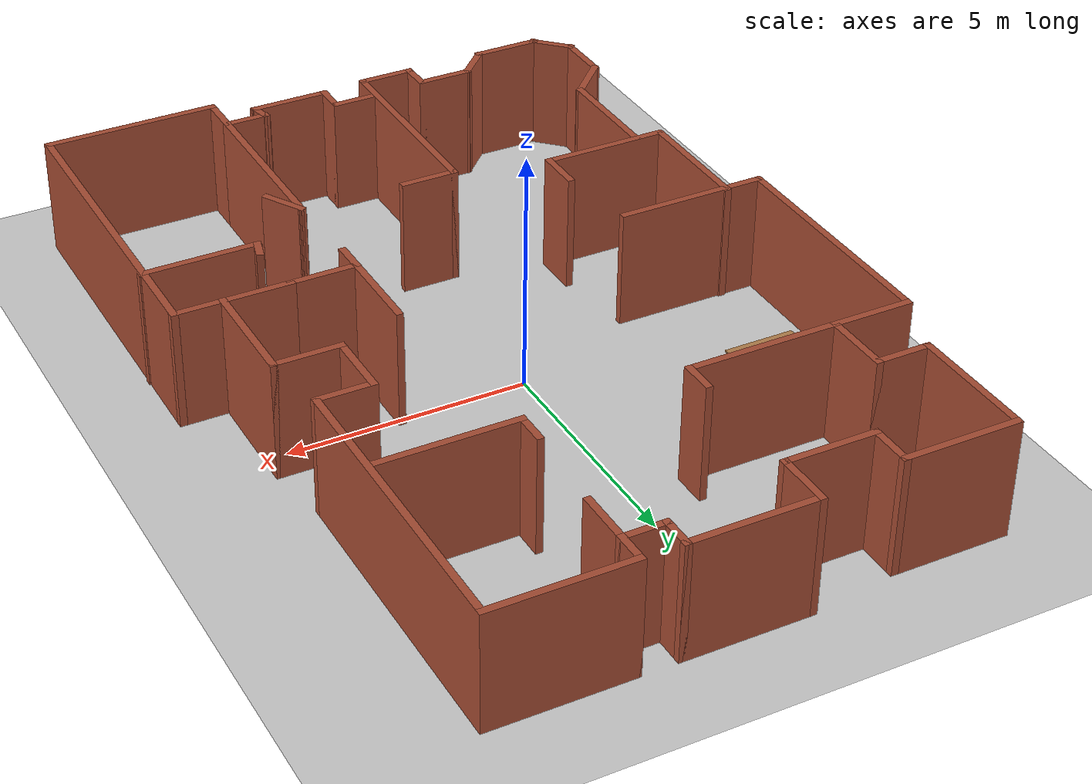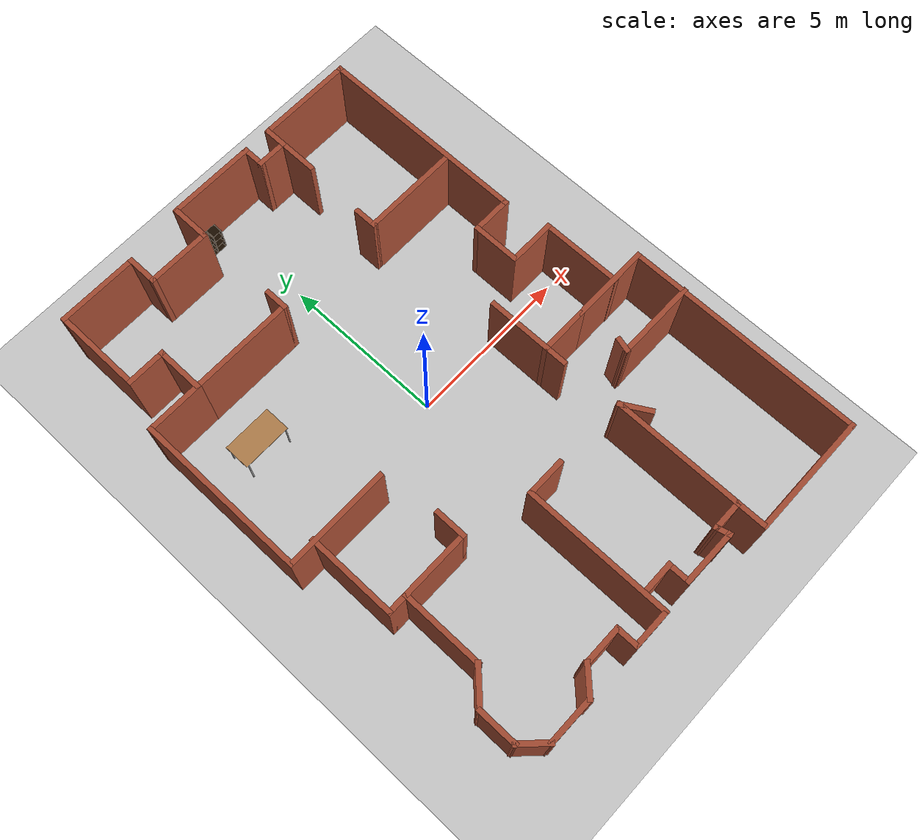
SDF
<sdf version="1.6">
 <world name="default">
  <model name="ground_plane">
   <static>1</static>
   <link name="link">
    <collision name="collision">
     <geometry><plane><normal>0 0 1</normal><size>100 100</size></plane></geometry>
     <surface>
      <contact><collide_bitmask>65535</collide_bitmask></contact>
      <friction><ode><mu>100</mu><mu2>50</mu2></ode></friction>
     </surface>
    </collision>
    <visual name="visual">
     <cast_shadows>0</cast_shadows>
     <geometry><plane><normal>0 0 1</normal><size>100 100</size></plane></geometry>
     <material>
      <script><uri>file://media/materials/scripts/gazebo.material</uri><name>Gazebo/Grey</name></script>
     </material>
    </visual>
   </link>
  </model>
  <model name="map_57">
   <pose>0.273385 -0.320951 0 0 -0 0</pose>
   <link name="Wall_0">
    <collision name="Wall_0_Collision">
     <geometry><box><size>1.25 0.15 2.5</size></box></geometry>
     <pose>0 0 1.25 0 -0 0</pose>
    </collision>
    <visual name="Wall_0_Visual">
     <pose>0 0 1.25 0 -0 0</pose>
     <geometry><box><size>1.25 0.15 2.5</size></box></geometry>
     <material>
      <script><uri>file://media/materials/scripts/gazebo.material</uri><name>Gazebo/Bricks</name></script>
      <ambient>1 1 1 1</ambient>
     </material>
     <meta><layer>0</layer></meta>
    </visual>
    <pose>-1.43298 8.01831 0 0 -0 -1.5708</pose>
   </link>
   <link name="Wall_1">
    <collision name="Wall_1_Collision">
     <geometry><box><size>2 0.15 2.5</size></box></geometry>
     <pose>0 0 1.25 0 -0 0</pose>
    </collision>
    <visual name="Wall_1_Visual">
     <pose>0 0 1.25 0 -0 0</pose>
     <geometry><box><size>2 0.15 2.5</size></box></geometry>
     <material>
      <script><uri>file://media/materials/scripts/gazebo.material</uri><name>Gazebo/Bricks</name></script>
      <ambient>1 1 1 1</ambient>
     </material>
     <meta><layer>0</layer></meta>
    </visual>
    <pose>-2.35798 7.46831 0 0 -0 3.14159</pose>
   </link>
   <link name="Wall_11">
    <collision name="Wall_11_Collision">
     <geometry><box><size>2.75 0.15 2.5</size></box></geometry>
     <pose>0 0 1.25 0 -0 0</pose>
    </collision>
    <visual name="Wall_11_Visual">
     <pose>0 0 1.25 0 -0 0</pose>
     <geometry><box><size>2.75 0.15 2.5</size></box></geometry>
     <material>
      <script><uri>file://media/materials/scripts/gazebo.material</uri><name>Gazebo/Bricks</name></script>
      <ambient>1 1 1 1</ambient>
     </material>
     <meta><layer>0</layer></meta>
    </visual>
    <pose>-5.34398 -1.99292 0 0 -0 -1.5708</pose>
   </link>
   <link name="Wall_12">
    <collision name="Wall_12_Collision">
     <geometry><box><size>2.75 0.15 2.5</size></box></geometry>
     <pose>0 0 1.25 0 -0 0</pose>
    </collision>
    <visual name="Wall_12_Visual">
     <pose>0 0 1.25 0 -0 0</pose>
     <geometry><box><size>2.75 0.15 2.5</size></box></geometry>
     <material>
      <script><uri>file://media/materials/scripts/gazebo.material</uri><name>Gazebo/Bricks</name></script>
      <ambient>1 1 1 1</ambient>
     </material>
     <meta><layer>0</layer></meta>
    </visual>
    <pose>-4.04397 -3.29292 0 0 -0 0</pose>
   </link>
   <link name="Wall_13">
    <collision name="Wall_13_Collision">
     <geometry><box><size>1 0.15 2.5</size></box></geometry>
     <pose>0 0 1.25 0 -0 0</pose>
    </collision>
    <visual name="Wall_13_Visual">
     <pose>0 0 1.25 0 -0 0</pose>
     <geometry><box><size>1 0.15 2.5</size></box></geometry>
     <material>
      <script><uri>file://media/materials/scripts/gazebo.material</uri><name>Gazebo/Bricks</name></script>
      <ambient>1 1 1 1</ambient>
     </material>
     <meta><layer>0</layer></meta>
    </visual>
    <pose>-2.74397 -2.86792 0 0 -0 1.5708</pose>
   </link>
   <link name="Wall_15">
    <collision name="Wall_15_Collision">
     <geometry><box><size>2.5 0.15 2.5</size></box></geometry>
     <pose>0 0 1.25 0 -0 0</pose>
    </collision>
    <visual name="Wall_15_Visual">
     <pose>0 0 1.25 0 -0 0</pose>
     <geometry><box><size>2.5 0.15 2.5</size></box></geometry>
     <material>
      <script><uri>file://media/materials/scripts/gazebo.material</uri><name>Gazebo/Bricks</name></script>
      <ambient>1 1 1 1</ambient>
     </material>
     <meta><layer>0</layer></meta>
    </visual>
    <pose>-4.77792 -4.48593 0 0 -0 -1.5708</pose>
   </link>
   <link name="Wall_16">
    <collision name="Wall_16_Collision">
     <geometry><box><size>1.25 0.15 2.5</size></box></geometry>
     <pose>0 0 1.25 0 -0 0</pose>
    </collision>
    <visual name="Wall_16_Visual">
     <pose>0 0 1.25 0 -0 0</pose>
     <geometry><box><size>1.25 0.15 2.5</size></box></geometry>
     <material>
      <script><uri>file://media/materials/scripts/gazebo.material</uri><name>Gazebo/Bricks</name></script>
      <ambient>1 1 1 1</ambient>
     </material>
     <meta><layer>0</layer></meta>
    </visual>
    <pose>-5.16683 -6.04984 0 0 -0 -2.35619</pose>
   </link>
   <link name="Wall_17">
    <collision name="Wall_17_Collision">
     <geometry><box><size>1.25 0.15 2.5</size></box></geometry>
     <pose>0 0 1.25 0 -0 0</pose>
    </collision>
    <visual name="Wall_17_Visual">
     <pose>0 0 1.25 0 -0 0</pose>
     <geometry><box><size>1.25 0.15 2.5</size></box></geometry>
     <material>
      <script><uri>file://media/materials/scripts/gazebo.material</uri><name>Gazebo/Bricks</name></script>
      <ambient>1 1 1 1</ambient>
     </material>
     <meta><layer>0</layer></meta>
    </visual>
    <pose>-5.55574 -6.98875 0 0 -0 -1.5708</pose>
   </link>
   <link name="Wall_18">
    <collision name="Wall_18_Collision">
     <geometry><box><size>1 0.15 2.5</size></box></geometry>
     <pose>0 0 1.25 0 -0 0</pose>
    </collision>
    <visual name="Wall_18_Visual">
     <pose>0 0 1.25 0 -0 0</pose>
     <geometry><box><size>1 0.15 2.5</size></box></geometry>
     <material>
      <script><uri>file://media/materials/scripts/gazebo.material</uri><name>Gazebo/Bricks</name></script>
      <ambient>1 1 1 1</ambient>
     </material>
     <meta><layer>0</layer></meta>
    </visual>
    <pose>-5.25522 -7.83927 0 0 -0 -0.785398</pose>
   </link>
   <link name="Wall_19">
    <collision name="Wall_19_Collision">
     <geometry><box><size>1.5 0.15 2.5</size></box></geometry>
     <pose>0 0 1.25 0 -0 0</pose>
    </collision>
    <visual name="Wall_19_Visual">
     <pose>0 0 1.25 0 -0 0</pose>
     <geometry><box><size>1.5 0.15 2.5</size></box></geometry>
     <material>
      <script><uri>file://media/materials/scripts/gazebo.material</uri><name>Gazebo/Bricks</name></script>
      <ambient>1 1 1 1</ambient>
     </material>
     <meta><layer>0</layer></meta>
    </visual>
    <pose>-4.2797 -8.13979 0 0 -0 0</pose>
   </link>
   <link name="Wall_2">
    <collision name="Wall_2_Collision">
     <geometry><box><size>1 0.15 2.5</size></box></geometry>
     <pose>0 0 1.25 0 -0 0</pose>
    </collision>
    <visual name="Wall_2_Visual">
     <pose>0 0 1.25 0 -0 0</pose>
     <geometry><box><size>1 0.15 2.5</size></box></geometry>
     <material>
      <script><uri>file://media/materials/scripts/gazebo.material</uri><name>Gazebo/Bricks</name></script>
      <ambient>1 1 1 1</ambient>
     </material>
     <meta><layer>0</layer></meta>
    </visual>
    <pose>-3.28298 7.89331 0 0 -0 1.5708</pose>
   </link>
   <link name="Wall_20">
    <collision name="Wall_20_Collision">
     <geometry><box><size>1 0.15 2.5</size></box></geometry>
     <pose>0 0 1.25 0 -0 0</pose>
    </collision>
    <visual name="Wall_20_Visual">
     <pose>0 0 1.25 0 -0 0</pose>
     <geometry><box><size>1 0.15 2.5</size></box></geometry>
     <material>
      <script><uri>file://media/materials/scripts/gazebo.material</uri><name>Gazebo/Bricks</name></script>
      <ambient>1 1 1 1</ambient>
     </material>
     <meta><layer>0</layer></meta>
    </visual>
    <pose>-3.30417 -7.83927 0 0 -0 0.785398</pose>
   </link>
   <link name="Wall_21">
    <collision name="Wall_21_Collision">
     <geometry><box><size>1.25 0.15 2.5</size></box></geometry>
     <pose>0 0 1.25 0 -0 0</pose>
    </collision>
    <visual name="Wall_21_Visual">
     <pose>0 0 1.25 0 -0 0</pose>
     <geometry><box><size>1.25 0.15 2.5</size></box></geometry>
     <material>
      <script><uri>file://media/materials/scripts/gazebo.material</uri><name>Gazebo/Bricks</name></script>
      <ambient>1 1 1 1</ambient>
     </material>
     <meta><layer>0</layer></meta>
    </visual>
    <pose>-2.45365 -7.53875 0 0 -0 0</pose>
   </link>
   <link name="Wall_22">
    <collision name="Wall_22_Collision">
     <geometry><box><size>0.75 0.15 2.5</size></box></geometry>
     <pose>0 0 1.25 0 -0 0</pose>
    </collision>
    <visual name="Wall_22_Visual">
     <pose>0 0 1.25 0 -0 0</pose>
     <geometry><box><size>0.75 0.15 2.5</size></box></geometry>
     <material>
      <script><uri>file://media/materials/scripts/gazebo.material</uri><name>Gazebo/Bricks</name></script>
      <ambient>1 1 1 1</ambient>
     </material>
     <meta><layer>0</layer></meta>
    </visual>
    <pose>-1.90365 -7.83875 0 0 -0 -1.5708</pose>
   </link>
   <link name="Wall_23">
    <collision name="Wall_23_Collision">
     <geometry><box><size>1.25 0.15 2.5</size></box></geometry>
     <pose>0 0 1.25 0 -0 0</pose>
    </collision>
    <visual name="Wall_23_Visual">
     <pose>0 0 1.25 0 -0 0</pose>
     <geometry><box><size>1.25 0.15 2.5</size></box></geometry>
     <material>
      <script><uri>file://media/materials/scripts/gazebo.material</uri><name>Gazebo/Bricks</name></script>
      <ambient>1 1 1 1</ambient>
     </material>
     <meta><layer>0</layer></meta>
    </visual>
    <pose>-1.35365 -8.13875 0 0 -0 0</pose>
   </link>
   <link name="Wall_24">
    <collision name="Wall_24_Collision">
     <geometry><box><size>4.5 0.15 2.5</size></box></geometry>
     <pose>0 0 1.25 0 -0 0</pose>
    </collision>
    <visual name="Wall_24_Visual">
     <pose>0 0 1.25 0 -0 0</pose>
     <geometry><box><size>4.5 0.15 2.5</size></box></geometry>
     <material>
      <script><uri>file://media/materials/scripts/gazebo.material</uri><name>Gazebo/Bricks</name></script>
      <ambient>1 1 1 1</ambient>
     </material>
     <meta><layer>0</layer></meta>
    </visual>
    <pose>-0.803654 -5.96375 0 0 -0 1.5708</pose>
   </link>
   <link name="Wall_26">
    <collision name="Wall_26_Collision">
     <geometry><box><size>1 0.15 2.5</size></box></geometry>
     <pose>0 0 1.25 0 -0 0</pose>
    </collision>
    <visual name="Wall_26_Visual">
     <pose>0 0 1.25 0 -0 0</pose>
     <geometry><box><size>1 0.15 2.5</size></box></geometry>
     <material>
      <script><uri>file://media/materials/scripts/gazebo.material</uri><name>Gazebo/Bricks</name></script>
      <ambient>1 1 1 1</ambient>
     </material>
     <meta><layer>0</layer></meta>
    </visual>
    <pose>-0.281037 -7.45638 0 0 -0 0</pose>
   </link>
   <link name="Wall_27">
    <collision name="Wall_27_Collision">
     <geometry><box><size>0.75 0.15 2.5</size></box></geometry>
     <pose>0 0 1.25 0 -0 0</pose>
    </collision>
    <visual name="Wall_27_Visual">
     <pose>0 0 1.25 0 -0 0</pose>
     <geometry><box><size>0.75 0.15 2.5</size></box></geometry>
     <material>
      <script><uri>file://media/materials/scripts/gazebo.material</uri><name>Gazebo/Bricks</name></script>
      <ambient>1 1 1 1</ambient>
     </material>
     <meta><layer>0</layer></meta>
    </visual>
    <pose>0.143963 -7.75638 0 0 -0 -1.5708</pose>
   </link>
   <link name="Wall_28">
    <collision name="Wall_28_Collision">
     <geometry><box><size>1.75 0.15 2.5</size></box></geometry>
     <pose>0 0 1.25 0 -0 0</pose>
    </collision>
    <visual name="Wall_28_Visual">
     <pose>0 0 1.25 0 -0 0</pose>
     <geometry><box><size>1.75 0.15 2.5</size></box></geometry>
     <material>
      <script><uri>file://media/materials/scripts/gazebo.material</uri><name>Gazebo/Bricks</name></script>
      <ambient>1 1 1 1</ambient>
     </material>
     <meta><layer>0</layer></meta>
    </visual>
    <pose>0.943963 -8.05638 0 0 -0 0</pose>
   </link>
   <link name="Wall_29">
    <collision name="Wall_29_Collision">
     <geometry><box><size>0.5 0.15 2.5</size></box></geometry>
     <pose>0 0 1.25 0 -0 0</pose>
    </collision>
    <visual name="Wall_29_Visual">
     <pose>0 0 1.25 0 -0 0</pose>
     <geometry><box><size>0.5 0.15 2.5</size></box></geometry>
     <material>
      <script><uri>file://media/materials/scripts/gazebo.material</uri><name>Gazebo/Bricks</name></script>
      <ambient>1 1 1 1</ambient>
     </material>
     <meta><layer>0</layer></meta>
    </visual>
    <pose>1.69867 -7.88735 0 0 -0 1.8326</pose>
   </link>
   <link name="Wall_3">
    <collision name="Wall_3_Collision">
     <geometry><box><size>2.5 0.15 2.5</size></box></geometry>
     <pose>0 0 1.25 0 -0 0</pose>
    </collision>
    <visual name="Wall_3_Visual">
     <pose>0 0 1.25 0 -0 0</pose>
     <geometry><box><size>2.5 0.15 2.5</size></box></geometry>
     <material>
      <script><uri>file://media/materials/scripts/gazebo.material</uri><name>Gazebo/Bricks</name></script>
      <ambient>1 1 1 1</ambient>
     </material>
     <meta><layer>0</layer></meta>
    </visual>
    <pose>-4.45798 8.31831 0 0 -0 3.14159</pose>
   </link>
   <link name="Wall_30">
    <collision name="Wall_30_Collision">
     <geometry><box><size>1 0.15 2.5</size></box></geometry>
     <pose>0 0 1.25 0 -0 0</pose>
    </collision>
    <visual name="Wall_30_Visual">
     <pose>0 0 1.25 0 -0 0</pose>
     <geometry><box><size>1 0.15 2.5</size></box></geometry>
     <material>
      <script><uri>file://media/materials/scripts/gazebo.material</uri><name>Gazebo/Bricks</name></script>
      <ambient>1 1 1 1</ambient>
     </material>
     <meta><layer>0</layer></meta>
    </visual>
    <pose>2.07838 -7.71831 0 0 -0 0</pose>
   </link>
   <link name="Wall_31">
    <collision name="Wall_31_Collision">
     <geometry><box><size>4 0.15 2.5</size></box></geometry>
     <pose>0 0 1.25 0 -0 0</pose>
    </collision>
    <visual name="Wall_31_Visual">
     <pose>0 0 1.25 0 -0 0</pose>
     <geometry><box><size>4 0.15 2.5</size></box></geometry>
     <material>
      <script><uri>file://media/materials/scripts/gazebo.material</uri><name>Gazebo/Bricks</name></script>
      <ambient>1 1 1 1</ambient>
     </material>
     <meta><layer>0</layer></meta>
    </visual>
    <pose>2.50338 -5.79331 0 0 -0 1.5708</pose>
   </link>
   <link name="Wall_33">
    <collision name="Wall_33_Collision">
     <geometry><box><size>1.25 0.15 2.5</size></box></geometry>
     <pose>0 0 1.25 0 -0 0</pose>
    </collision>
    <visual name="Wall_33_Visual">
     <pose>0 0 1.25 0 -0 0</pose>
     <geometry><box><size>1.25 0.15 2.5</size></box></geometry>
     <material>
      <script><uri>file://media/materials/scripts/gazebo.material</uri><name>Gazebo/Bricks</name></script>
      <ambient>1 1 1 1</ambient>
     </material>
     <meta><layer>0</layer></meta>
    </visual>
    <pose>-0.253654 -3.78875 0 0 -0 0</pose>
   </link>
   <link name="Wall_35">
    <collision name="Wall_35_Collision">
     <geometry><box><size>1 0.15 2.5</size></box></geometry>
     <pose>0 0 1.25 0 -0 0</pose>
    </collision>
    <visual name="Wall_35_Visual">
     <pose>0 0 1.25 0 -0 0</pose>
     <geometry><box><size>1 0.15 2.5</size></box></geometry>
     <material>
      <script><uri>file://media/materials/scripts/gazebo.material</uri><name>Gazebo/Bricks</name></script>
      <ambient>1 1 1 1</ambient>
     </material>
     <meta><layer>0</layer></meta>
    </visual>
    <pose>2.50338 -8.14331 0 0 -0 -1.5708</pose>
   </link>
   <link name="Wall_36">
    <collision name="Wall_36_Collision">
     <geometry><box><size>3.75 0.15 2.5</size></box></geometry>
     <pose>0 0 1.25 0 -0 0</pose>
    </collision>
    <visual name="Wall_36_Visual">
     <pose>0 0 1.25 0 -0 0</pose>
     <geometry><box><size>3.75 0.15 2.5</size></box></geometry>
     <material>
      <script><uri>file://media/materials/scripts/gazebo.material</uri><name>Gazebo/Bricks</name></script>
      <ambient>1 1 1 1</ambient>
     </material>
     <meta><layer>0</layer></meta>
    </visual>
    <pose>4.30338 -8.56831 0 0 -0 0</pose>
   </link>
   <link name="Wall_37">
    <collision name="Wall_37_Collision">
     <geometry><box><size>7.25 0.15 2.5</size></box></geometry>
     <pose>0 0 1.25 0 -0 0</pose>
    </collision>
    <visual name="Wall_37_Visual">
     <pose>0 0 1.25 0 -0 0</pose>
     <geometry><box><size>7.25 0.15 2.5</size></box></geometry>
     <material>
      <script><uri>file://media/materials/scripts/gazebo.material</uri><name>Gazebo/Bricks</name></script>
      <ambient>1 1 1 1</ambient>
     </material>
     <meta><layer>0</layer></meta>
    </visual>
    <pose>6.10338 -5.01831 0 0 -0 1.5708</pose>
   </link>
   <link name="Wall_38">
    <collision name="Wall_38_Collision">
     <geometry><box><size>2.5 0.15 2.5</size></box></geometry>
     <pose>0 0 1.25 0 -0 0</pose>
    </collision>
    <visual name="Wall_38_Visual">
     <pose>0 0 1.25 0 -0 0</pose>
     <geometry><box><size>2.5 0.15 2.5</size></box></geometry>
     <material>
      <script><uri>file://media/materials/scripts/gazebo.material</uri><name>Gazebo/Bricks</name></script>
      <ambient>1 1 1 1</ambient>
     </material>
     <meta><layer>0</layer></meta>
    </visual>
    <pose>4.92838 -1.46831 0 0 -0 3.14159</pose>
   </link>
   <link name="Wall_4">
    <collision name="Wall_4_Collision">
     <geometry><box><size>2.75 0.15 2.5</size></box></geometry>
     <pose>0 0 1.25 0 -0 0</pose>
    </collision>
    <visual name="Wall_4_Visual">
     <pose>0 0 1.25 0 -0 0</pose>
     <geometry><box><size>2.75 0.15 2.5</size></box></geometry>
     <material>
      <script><uri>file://media/materials/scripts/gazebo.material</uri><name>Gazebo/Bricks</name></script>
      <ambient>1 1 1 1</ambient>
     </material>
     <meta><layer>0</layer></meta>
    </visual>
    <pose>-5.63298 7.01831 0 0 -0 -1.5708</pose>
   </link>
   <link name="Wall_40">
    <collision name="Wall_40_Collision">
     <geometry><box><size>2.5 0.15 2.5</size></box></geometry>
     <pose>0 0 1.25 0 -0 0</pose>
    </collision>
    <visual name="Wall_40_Visual">
     <pose>0 0 1.25 0 -0 0</pose>
     <geometry><box><size>2.5 0.15 2.5</size></box></geometry>
     <material>
      <script><uri>file://media/materials/scripts/gazebo.material</uri><name>Gazebo/Bricks</name></script>
      <ambient>1 1 1 1</ambient>
     </material>
     <meta><layer>0</layer></meta>
    </visual>
    <pose>4.95798 -3.03661 0 0 -0 3.14159</pose>
   </link>
   <link name="Wall_41">
    <collision name="Wall_41_Collision">
     <geometry><box><size>0.5 0.15 2.5</size></box></geometry>
     <pose>0 0 1.25 0 -0 0</pose>
    </collision>
    <visual name="Wall_41_Visual">
     <pose>0 0 1.25 0 -0 0</pose>
     <geometry><box><size>0.5 0.15 2.5</size></box></geometry>
     <material>
      <script><uri>file://media/materials/scripts/gazebo.material</uri><name>Gazebo/Bricks</name></script>
      <ambient>1 1 1 1</ambient>
     </material>
     <meta><layer>0</layer></meta>
    </visual>
    <pose>3.82827 -2.86757 0 0 -0 1.309</pose>
   </link>
   <link name="Wall_43">
    <collision name="Wall_43_Collision">
     <geometry><box><size>1.5 0.15 2.5</size></box></geometry>
     <pose>0 0 1.25 0 -0 0</pose>
    </collision>
    <visual name="Wall_43_Visual">
     <pose>0 0 1.25 0 -0 0</pose>
     <geometry><box><size>1.5 0.15 2.5</size></box></geometry>
     <material>
      <script><uri>file://media/materials/scripts/gazebo.material</uri><name>Gazebo/Bricks</name></script>
      <ambient>1 1 1 1</ambient>
     </material>
     <meta><layer>0</layer></meta>
    </visual>
    <pose>3.07838 -1.46831 0 0 -0 3.14159</pose>
   </link>
   <link name="Wall_44">
    <collision name="Wall_44_Collision">
     <geometry><box><size>0.75 0.15 2.5</size></box></geometry>
     <pose>0 0 1.25 0 -0 0</pose>
    </collision>
    <visual name="Wall_44_Visual">
     <pose>0 0 1.25 0 -0 0</pose>
     <geometry><box><size>0.75 0.15 2.5</size></box></geometry>
     <material>
      <script><uri>file://media/materials/scripts/gazebo.material</uri><name>Gazebo/Bricks</name></script>
      <ambient>1 1 1 1</ambient>
     </material>
     <meta><layer>0</layer></meta>
    </visual>
    <pose>2.40338 -1.76831 0 0 -0 -1.5708</pose>
   </link>
   <link name="Wall_46">
    <collision name="Wall_46_Collision">
     <geometry><box><size>1 0.15 2.5</size></box></geometry>
     <pose>0 0 1.25 0 -0 0</pose>
    </collision>
    <visual name="Wall_46_Visual">
     <pose>0 0 1.25 0 -0 0</pose>
     <geometry><box><size>1 0.15 2.5</size></box></geometry>
     <material>
      <script><uri>file://media/materials/scripts/gazebo.material</uri><name>Gazebo/Bricks</name></script>
      <ambient>1 1 1 1</ambient>
     </material>
     <meta><layer>0</layer></meta>
    </visual>
    <pose>2.71588 -4.23637 0 0 -0 -1.0472</pose>
   </link>
   <link name="Wall_48">
    <collision name="Wall_48_Collision">
     <geometry><box><size>2.75 0.15 2.5</size></box></geometry>
     <pose>0 0 1.25 0 -0 0</pose>
    </collision>
    <visual name="Wall_48_Visual">
     <pose>0 0 1.25 0 -0 0</pose>
     <geometry><box><size>2.75 0.15 2.5</size></box></geometry>
     <material>
      <script><uri>file://media/materials/scripts/gazebo.material</uri><name>Gazebo/Bricks</name></script>
      <ambient>1 1 1 1</ambient>
     </material>
     <meta><layer>0</layer></meta>
    </visual>
    <pose>-0.132977 8.56831 0 0 -0 0</pose>
   </link>
   <link name="Wall_49">
    <collision name="Wall_49_Collision">
     <geometry><box><size>0.75 0.15 2.5</size></box></geometry>
     <pose>0 0 1.25 0 -0 0</pose>
    </collision>
    <visual name="Wall_49_Visual">
     <pose>0 0 1.25 0 -0 0</pose>
     <geometry><box><size>0.75 0.15 2.5</size></box></geometry>
     <material>
      <script><uri>file://media/materials/scripts/gazebo.material</uri><name>Gazebo/Bricks</name></script>
      <ambient>1 1 1 1</ambient>
     </material>
     <meta><layer>0</layer></meta>
    </visual>
    <pose>1.16702 8.26831 0 0 -0 -1.5708</pose>
   </link>
   <link name="Wall_5">
    <collision name="Wall_5_Collision">
     <geometry><box><size>1.25 0.15 2.5</size></box></geometry>
     <pose>0 0 1.25 0 -0 0</pose>
    </collision>
    <visual name="Wall_5_Visual">
     <pose>0 0 1.25 0 -0 0</pose>
     <geometry><box><size>1.25 0.15 2.5</size></box></geometry>
     <material>
      <script><uri>file://media/materials/scripts/gazebo.material</uri><name>Gazebo/Bricks</name></script>
      <ambient>1 1 1 1</ambient>
     </material>
     <meta><layer>0</layer></meta>
    </visual>
    <pose>-5.08298 5.71831 0 0 -0 0</pose>
   </link>
   <link name="Wall_50">
    <collision name="Wall_50_Collision">
     <geometry><box><size>1 0.15 2.5</size></box></geometry>
     <pose>0 0 1.25 0 -0 0</pose>
    </collision>
    <visual name="Wall_50_Visual">
     <pose>0 0 1.25 0 -0 0</pose>
     <geometry><box><size>1 0.15 2.5</size></box></geometry>
     <material>
      <script><uri>file://media/materials/scripts/gazebo.material</uri><name>Gazebo/Bricks</name></script>
      <ambient>1 1 1 1</ambient>
     </material>
     <meta><layer>0</layer></meta>
    </visual>
    <pose>1.59202 7.96831 0 0 -0 0</pose>
   </link>
   <link name="Wall_51">
    <collision name="Wall_51_Collision">
     <geometry><box><size>0.75 0.15 2.5</size></box></geometry>
     <pose>0 0 1.25 0 -0 0</pose>
    </collision>
    <visual name="Wall_51_Visual">
     <pose>0 0 1.25 0 -0 0</pose>
     <geometry><box><size>0.75 0.15 2.5</size></box></geometry>
     <material>
      <script><uri>file://media/materials/scripts/gazebo.material</uri><name>Gazebo/Bricks</name></script>
      <ambient>1 1 1 1</ambient>
     </material>
     <meta><layer>0</layer></meta>
    </visual>
    <pose>2.01702 8.26831 0 0 -0 1.5708</pose>
   </link>
   <link name="Wall_52">
    <collision name="Wall_52_Collision">
     <geometry><box><size>3 0.15 2.5</size></box></geometry>
     <pose>0 0 1.25 0 -0 0</pose>
    </collision>
    <visual name="Wall_52_Visual">
     <pose>0 0 1.25 0 -0 0</pose>
     <geometry><box><size>3 0.15 2.5</size></box></geometry>
     <material>
      <script><uri>file://media/materials/scripts/gazebo.material</uri><name>Gazebo/Bricks</name></script>
      <ambient>1 1 1 1</ambient>
     </material>
     <meta><layer>0</layer></meta>
    </visual>
    <pose>3.44202 8.56831 0 0 -0 0</pose>
   </link>
   <link name="Wall_53">
    <collision name="Wall_53_Collision">
     <geometry><box><size>6.5 0.15 2.5</size></box></geometry>
     <pose>0 0 1.25 0 -0 0</pose>
    </collision>
    <visual name="Wall_53_Visual">
     <pose>0 0 1.25 0 -0 0</pose>
     <geometry><box><size>6.5 0.15 2.5</size></box></geometry>
     <material>
      <script><uri>file://media/materials/scripts/gazebo.material</uri><name>Gazebo/Bricks</name></script>
      <ambient>1 1 1 1</ambient>
     </material>
     <meta><layer>0</layer></meta>
    </visual>
    <pose>4.86702 5.39331 0 0 -0 -1.5708</pose>
   </link>
   <link name="Wall_54">
    <collision name="Wall_54_Collision">
     <geometry><box><size>1.25 0.15 2.5</size></box></geometry>
     <pose>0 0 1.25 0 -0 0</pose>
    </collision>
    <visual name="Wall_54_Visual">
     <pose>0 0 1.25 0 -0 0</pose>
     <geometry><box><size>1.25 0.15 2.5</size></box></geometry>
     <material>
      <script><uri>file://media/materials/scripts/gazebo.material</uri><name>Gazebo/Bricks</name></script>
      <ambient>1 1 1 1</ambient>
     </material>
     <meta><layer>0</layer></meta>
    </visual>
    <pose>4.31702 2.21831 0 0 -0 3.14159</pose>
   </link>
   <link name="Wall_55">
    <collision name="Wall_55_Collision">
     <geometry><box><size>1.5 0.15 2.5</size></box></geometry>
     <pose>0 0 1.25 0 -0 0</pose>
    </collision>
    <visual name="Wall_55_Visual">
     <pose>0 0 1.25 0 -0 0</pose>
     <geometry><box><size>1.5 0.15 2.5</size></box></geometry>
     <material>
      <script><uri>file://media/materials/scripts/gazebo.material</uri><name>Gazebo/Bricks</name></script>
      <ambient>1 1 1 1</ambient>
     </material>
     <meta><layer>0</layer></meta>
    </visual>
    <pose>3.76702 1.54331 0 0 -0 -1.5708</pose>
   </link>
   <link name="Wall_56">
    <collision name="Wall_56_Collision">
     <geometry><box><size>1.5 0.15 2.5</size></box></geometry>
     <pose>0 0 1.25 0 -0 0</pose>
    </collision>
    <visual name="Wall_56_Visual">
     <pose>0 0 1.25 0 -0 0</pose>
     <geometry><box><size>1.5 0.15 2.5</size></box></geometry>
     <material>
      <script><uri>file://media/materials/scripts/gazebo.material</uri><name>Gazebo/Bricks</name></script>
      <ambient>1 1 1 1</ambient>
     </material>
     <meta><layer>0</layer></meta>
    </visual>
    <pose>4.44202 0.868308 0 0 -0 0</pose>
   </link>
   <link name="Wall_57">
    <collision name="Wall_57_Collision">
     <geometry><box><size>2.5 0.15 2.5</size></box></geometry>
     <pose>0 0 1.25 0 -0 0</pose>
    </collision>
    <visual name="Wall_57_Visual">
     <pose>0 0 1.25 0 -0 0</pose>
     <geometry><box><size>2.5 0.15 2.5</size></box></geometry>
     <material>
      <script><uri>file://media/materials/scripts/gazebo.material</uri><name>Gazebo/Bricks</name></script>
      <ambient>1 1 1 1</ambient>
     </material>
     <meta><layer>0</layer></meta>
    </visual>
    <pose>5.11702 -0.306692 0 0 -0 -1.5708</pose>
   </link>
   <link name="Wall_59">
    <collision name="Wall_59_Collision">
     <geometry><box><size>2 0.15 2.5</size></box></geometry>
     <pose>0 0 1.25 0 -0 0</pose>
    </collision>
    <visual name="Wall_59_Visual">
     <pose>0 0 1.25 0 -0 0</pose>
     <geometry><box><size>2 0.15 2.5</size></box></geometry>
     <material>
      <script><uri>file://media/materials/scripts/gazebo.material</uri><name>Gazebo/Bricks</name></script>
      <ambient>1 1 1 1</ambient>
     </material>
     <meta><layer>0</layer></meta>
    </visual>
    <pose>2.40338 -0.543309 0 0 -0 1.5708</pose>
   </link>
   <link name="Wall_6">
    <collision name="Wall_6_Collision">
     <geometry><box><size>1.5 0.15 2.5</size></box></geometry>
     <pose>0 0 1.25 0 -0 0</pose>
    </collision>
    <visual name="Wall_6_Visual">
     <pose>0 0 1.25 0 -0 0</pose>
     <geometry><box><size>1.5 0.15 2.5</size></box></geometry>
     <material>
      <script><uri>file://media/materials/scripts/gazebo.material</uri><name>Gazebo/Bricks</name></script>
      <ambient>1 1 1 1</ambient>
     </material>
     <meta><layer>0</layer></meta>
    </visual>
    <pose>-4.53298 5.04331 0 0 -0 -1.5708</pose>
   </link>
   <link name="Wall_61">
    <collision name="Wall_61_Collision">
     <geometry><box><size>3.25 0.15 2.5</size></box></geometry>
     <pose>0 0 1.25 0 -0 0</pose>
    </collision>
    <visual name="Wall_61_Visual">
     <pose>0 0 1.25 0 -0 0</pose>
     <geometry><box><size>3.25 0.15 2.5</size></box></geometry>
     <material>
      <script><uri>file://media/materials/scripts/gazebo.material</uri><name>Gazebo/Bricks</name></script>
      <ambient>1 1 1 1</ambient>
     </material>
     <meta><layer>0</layer></meta>
    </visual>
    <pose>-2.98298 4.36831 0 0 -0 0</pose>
   </link>
   <link name="Wall_62">
    <collision name="Wall_62_Collision">
     <geometry><box><size>0.75 0.15 2.5</size></box></geometry>
     <pose>0 0 1.25 0 -0 0</pose>
    </collision>
    <visual name="Wall_62_Visual">
     <pose>0 0 1.25 0 -0 0</pose>
     <geometry><box><size>0.75 0.15 2.5</size></box></geometry>
     <material>
      <script><uri>file://media/materials/scripts/gazebo.material</uri><name>Gazebo/Bricks</name></script>
      <ambient>1 1 1 1</ambient>
     </material>
     <meta><layer>0</layer></meta>
    </visual>
    <pose>-1.43298 4.66831 0 0 -0 1.5708</pose>
   </link>
   <link name="Wall_64">
    <collision name="Wall_64_Collision">
     <geometry><box><size>0.75 0.15 2.5</size></box></geometry>
     <pose>0 0 1.25 0 -0 0</pose>
    </collision>
    <visual name="Wall_64_Visual">
     <pose>0 0 1.25 0 -0 0</pose>
     <geometry><box><size>0.75 0.15 2.5</size></box></geometry>
     <material>
      <script><uri>file://media/materials/scripts/gazebo.material</uri><name>Gazebo/Bricks</name></script>
      <ambient>1 1 1 1</ambient>
     </material>
     <meta><layer>0</layer></meta>
    </visual>
    <pose>1.92506 4.65725 0 0 -0 -1.5708</pose>
   </link>
   <link name="Wall_65">
    <collision name="Wall_65_Collision">
     <geometry><box><size>3 0.15 2.5</size></box></geometry>
     <pose>0 0 1.25 0 -0 0</pose>
    </collision>
    <visual name="Wall_65_Visual">
     <pose>0 0 1.25 0 -0 0</pose>
     <geometry><box><size>3 0.15 2.5</size></box></geometry>
     <material>
      <script><uri>file://media/materials/scripts/gazebo.material</uri><name>Gazebo/Bricks</name></script>
      <ambient>1 1 1 1</ambient>
     </material>
     <meta><layer>0</layer></meta>
    </visual>
    <pose>3.35006 4.35725 0 0 -0 0</pose>
   </link>
   <link name="Wall_67">
    <collision name="Wall_67_Collision">
     <geometry><box><size>1.25 0.15 2.5</size></box></geometry>
     <pose>0 0 1.25 0 -0 0</pose>
    </collision>
    <visual name="Wall_67_Visual">
     <pose>0 0 1.25 0 -0 0</pose>
     <geometry><box><size>1.25 0.15 2.5</size></box></geometry>
     <material>
      <script><uri>file://media/materials/scripts/gazebo.material</uri><name>Gazebo/Bricks</name></script>
      <ambient>1 1 1 1</ambient>
     </material>
     <meta><layer>0</layer></meta>
    </visual>
    <pose>2.01702 7.41831 0 0 -0 -1.5708</pose>
   </link>
   <link name="Wall_7">
    <collision name="Wall_7_Collision">
     <geometry><box><size>1.75 0.15 2.5</size></box></geometry>
     <pose>0 0 1.25 0 -0 0</pose>
    </collision>
    <visual name="Wall_7_Visual">
     <pose>0 0 1.25 0 -0 0</pose>
     <geometry><box><size>1.75 0.15 2.5</size></box></geometry>
     <material>
      <script><uri>file://media/materials/scripts/gazebo.material</uri><name>Gazebo/Bricks</name></script>
      <ambient>1 1 1 1</ambient>
     </material>
     <meta><layer>0</layer></meta>
    </visual>
    <pose>-5.33298 4.36831 0 0 -0 3.14159</pose>
   </link>
   <link name="Wall_8">
    <collision name="Wall_8_Collision">
     <geometry><box><size>5.25 0.15 2.5</size></box></geometry>
     <pose>0 0 1.25 0 -0 0</pose>
    </collision>
    <visual name="Wall_8_Visual">
     <pose>0 0 1.25 0 -0 0</pose>
     <geometry><box><size>5.25 0.15 2.5</size></box></geometry>
     <material>
      <script><uri>file://media/materials/scripts/gazebo.material</uri><name>Gazebo/Bricks</name></script>
      <ambient>1 1 1 1</ambient>
     </material>
     <meta><layer>0</layer></meta>
    </visual>
    <pose>-6.13298 1.81831 0 0 -0 -1.5708</pose>
   </link>
   <link name="Wall_9">
    <collision name="Wall_9_Collision">
     <geometry><box><size>3.25 0.15 2.5</size></box></geometry>
     <pose>0 0 1.25 0 -0 0</pose>
    </collision>
    <visual name="Wall_9_Visual">
     <pose>0 0 1.25 0 -0 0</pose>
     <geometry><box><size>3.25 0.15 2.5</size></box></geometry>
     <material>
      <script><uri>file://media/materials/scripts/gazebo.material</uri><name>Gazebo/Bricks</name></script>
      <ambient>1 1 1 1</ambient>
     </material>
     <meta><layer>0</layer></meta>
    </visual>
    <pose>-4.58298 -0.731692 0 0 -0 0</pose>
   </link>
   <static>1</static>
  </model>
  <model name="table">
   <static>1</static>
   <link name="link">
    <collision name="surface">
     <pose>0 0 1 0 -0 0</pose>
     <geometry><box><size>1.5 0.8 0.03</size></box></geometry>
     <surface><friction><ode><mu>0.6</mu><mu2>0.6</mu2></ode></friction></surface>
    </collision>
    <visual name="visual1">
     <pose>0 0 1 0 -0 0</pose>
     <geometry><box><size>1.5 0.8 0.03</size></box></geometry>
     <material>
      <script><uri>file://media/materials/scripts/gazebo.material</uri><name>Gazebo/Wood</name></script>
     </material>
    </visual>
    <collision name="front_left_leg">
     <pose>0.68 0.38 0.5 0 -0 0</pose>
     <geometry><cylinder><radius>0.02</radius><length>1</length></cylinder></geometry>
    </collision>
    <visual name="front_left_leg">
     <pose>0.68 0.38 0.5 0 -0 0</pose>
     <geometry><cylinder><radius>0.02</radius><length>1</length></cylinder></geometry>
     <material>
      <script><uri>file://media/materials/scripts/gazebo.material</uri><name>Gazebo/Grey</name></script>
     </material>
    </visual>
    <collision name="front_right_leg">
     <pose>0.68 -0.38 0.5 0 -0 0</pose>
     <geometry><cylinder><radius>0.02</radius><length>1</length></cylinder></geometry>
    </collision>
    <visual name="front_right_leg">
     <pose>0.68 -0.38 0.5 0 -0 0</pose>
     <geometry><cylinder><radius>0.02</radius><length>1</length></cylinder></geometry>
     <material>
      <script><uri>file://media/materials/scripts/gazebo.material</uri><name>Gazebo/Grey</name></script>
     </material>
    </visual>
    <collision name="back_right_leg">
     <pose>-0.68 -0.38 0.5 0 -0 0</pose>
     <geometry><cylinder><radius>0.02</radius><length>1</length></cylinder></geometry>
    </collision>
    <visual name="back_right_leg">
     <pose>-0.68 -0.38 0.5 0 -0 0</pose>
     <geometry><cylinder><radius>0.02</radius><length>1</length></cylinder></geometry>
     <material>
      <script><uri>file://media/materials/scripts/gazebo.material</uri><name>Gazebo/Grey</name></script>
     </material>
    </visual>
    <collision name="back_left_leg">
     <pose>-0.68 0.38 0.5 0 -0 0</pose>
     <geometry><cylinder><radius>0.02</radius><length>1</length></cylinder></geometry>
    </collision>
    <visual name="back_left_leg">
     <pose>-0.68 0.38 0.5 0 -0 0</pose>
     <geometry><cylinder><radius>0.02</radius><length>1</length></cylinder></geometry>
     <material>
      <script><uri>file://media/materials/scripts/gazebo.material</uri><name>Gazebo/Grey</name></script>
     </material>
    </visual>
   </link>
   <pose>-3.98122 2.44066 0 0 -0 0</pose>
  </model>
  <model name="6_Cube_StorageE_2">
   <link name="Wall_0">
    <pose>0 0 0.01 0 -0 0</pose>
    <inertial>
     <mass>1.6201</mass>
     <inertia><ixx>0.0119</ixx><iyy>0.0631</iyy><izz>0.0513</izz><ixy>0</ixy><ixz>0</ixz><iyz>0</iyz></inertia>
    </inertial>
    <collision name="Wall_0_Collision"><geometry><box><size>0.616 0.296 0.02</size></box></geometry></collision>
    <visual name="Wall_0_Visual">
     <geometry><box><size>0.616 0.296 0.02</size></box></geometry>
     <material>
      <script><uri>file://media/materials/scripts/gazebo.material</uri><name>Gazebo/Grey</name></script>
      <ambient>0.105882 0.0509804 0 1</ambient>
     </material>
    </visual>
   </link>
   <joint name="0_2" type="fixed">
    <pose>-0.308 0 0 0 -0 0</pose>
    <parent>Wall_2</parent>
    <child>Wall_0</child>
    <axis>
     <xyz>1 0 0</xyz>
     <use_parent_model_frame>0</use_parent_model_frame>
     <limit><lower>-1e+16</lower><upper>1e+16</upper></limit>
    </axis>
   </joint>
   <joint name="0_12" type="fixed">
    <parent>Wall_12</parent>
    <child>Wall_0</child>
    <axis>
     <xyz>0 0 1</xyz>
     <use_parent_model_frame>0</use_parent_model_frame>
     <limit><lower>-1e+16</lower><upper>1e+16</upper></limit>
    </axis>
   </joint>
   <joint name="0_4" type="fixed">
    <pose>0.308 0 0 0 -0 0</pose>
    <parent>Wall_4</parent>
    <child>Wall_0</child>
    <axis>
     <xyz>1 0 0</xyz>
     <use_parent_model_frame>0</use_parent_model_frame>
     <limit><lower>-1e+16</lower><upper>1e+16</upper></limit>
    </axis>
   </joint>
   <link name="Wall_10">
    <pose>0 0 0.61 0 -0 0</pose>
    <inertial>
     <mass>1.6201</mass>
     <inertia><ixx>0.0119</ixx><iyy>0.0631</iyy><izz>0.0513</izz><ixy>0</ixy><ixz>0</ixz><iyz>0</iyz></inertia>
    </inertial>
    <collision name="Wall_10_Collision"><geometry><box><size>0.616 0.296 0.02</size></box></geometry></collision>
    <visual name="Wall_10_Visual">
     <geometry><box><size>0.616 0.296 0.02</size></box></geometry>
     <material>
      <script><uri>file://media/materials/scripts/gazebo.material</uri><name>Gazebo/Grey</name></script>
      <ambient>0.105882 0.0509804 0 1</ambient>
     </material>
    </visual>
   </link>
   <joint name="10_2" type="fixed">
    <pose>-0.308 0 0 0 -0 0</pose>
    <parent>Wall_2</parent>
    <child>Wall_10</child>
    <axis>
     <xyz>1 0 0</xyz>
     <use_parent_model_frame>0</use_parent_model_frame>
     <limit><lower>-1e+16</lower><upper>1e+16</upper></limit>
    </axis>
   </joint>
   <joint name="10_12" type="fixed">
    <parent>Wall_12</parent>
    <child>Wall_10</child>
    <axis>
     <xyz>0 0 1</xyz>
     <use_parent_model_frame>0</use_parent_model_frame>
     <limit><lower>-1e+16</lower><upper>1e+16</upper></limit>
    </axis>
   </joint>
   <joint name="10_4" type="fixed">
    <pose>0.308 0 0 0 -0 0</pose>
    <parent>Wall_4</parent>
    <child>Wall_10</child>
    <axis>
     <xyz>1 0 0</xyz>
     <use_parent_model_frame>0</use_parent_model_frame>
     <limit><lower>-1e+16</lower><upper>1e+16</upper></limit>
    </axis>
   </joint>
   <link name="Wall_12">
    <pose>0 0 0.4575 0 -0 0</pose>
    <inertial>
     <mass>2.4065</mass>
     <inertia><ixx>0.0177</ixx><iyy>0.1855</iyy><izz>0.168</izz><ixy>0</ixy><ixz>0</ixz><iyz>0</iyz></inertia>
    </inertial>
    <collision name="Wall_12_Collision"><geometry><box><size>0.02 0.296 0.915</size></box></geometry></collision>
    <visual name="Wall_12_Visual">
     <geometry><box><size>0.02 0.296 0.915</size></box></geometry>
     <material>
      <script><uri>file://media/materials/scripts/gazebo.material</uri><name>Gazebo/Grey</name></script>
      <ambient>0.105882 0.0509804 0 1</ambient>
     </material>
    </visual>
   </link>
   <link name="Wall_2">
    <pose>-0.298 0 0.4575 0 -0 0</pose>
    <inertial>
     <mass>2.4065</mass>
     <inertia><ixx>0.0177</ixx><iyy>0.1855</iyy><izz>0.168</izz><ixy>0</ixy><ixz>0</ixz><iyz>0</iyz></inertia>
    </inertial>
    <collision name="Wall_2_Collision"><geometry><box><size>0.02 0.296 0.915</size></box></geometry></collision>
    <visual name="Wall_2_Visual">
     <geometry><box><size>0.02 0.296 0.915</size></box></geometry>
     <material>
      <script><uri>file://media/materials/scripts/gazebo.material</uri><name>Gazebo/Grey</name></script>
      <ambient>0.105882 0.0509804 0 1</ambient>
     </material>
    </visual>
   </link>
   <link name="Wall_4">
    <pose>0.298 0 0.4575 0 -0 0</pose>
    <inertial>
     <mass>2.4065</mass>
     <inertia><ixx>0.0177</ixx><iyy>0.1855</iyy><izz>0.168</izz><ixy>0</ixy><ixz>0</ixz><iyz>0</iyz></inertia>
    </inertial>
    <collision name="Wall_4_Collision"><geometry><box><size>0.02 0.296 0.915</size></box></geometry></collision>
    <visual name="Wall_4_Visual">
     <geometry><box><size>0.02 0.296 0.915</size></box></geometry>
     <material>
      <script><uri>file://media/materials/scripts/gazebo.material</uri><name>Gazebo/Grey</name></script>
      <ambient>0.105882 0.0509804 0 1</ambient>
     </material>
    </visual>
   </link>
   <link name="Wall_6">
    <pose>0 0 0.905 0 -0 0</pose>
    <inertial>
     <mass>1.6201</mass>
     <inertia><ixx>0.0119</ixx><iyy>0.0631</iyy><izz>0.0513</izz><ixy>0</ixy><ixz>0</ixz><iyz>0</iyz></inertia>
    </inertial>
    <collision name="Wall_6_Collision"><geometry><box><size>0.616 0.296 0.02</size></box></geometry></collision>
    <visual name="Wall_6_Visual">
     <geometry><box><size>0.616 0.296 0.02</size></box></geometry>
     <material>
      <script><uri>file://media/materials/scripts/gazebo.material</uri><name>Gazebo/Grey</name></script>
      <ambient>0.105882 0.0509804 0 1</ambient>
     </material>
    </visual>
   </link>
   <joint name="6_2" type="fixed">
    <pose>-0.308 0 0 0 -0 0</pose>
    <parent>Wall_2</parent>
    <child>Wall_6</child>
    <axis>
     <xyz>2 0 0</xyz>
     <use_parent_model_frame>0</use_parent_model_frame>
     <limit><lower>-1e+16</lower><upper>1e+16</upper></limit>
    </axis>
   </joint>
   <joint name="6_12" type="fixed">
    <parent>Wall_12</parent>
    <child>Wall_6</child>
    <axis>
     <xyz>0 0 1</xyz>
     <use_parent_model_frame>0</use_parent_model_frame>
     <limit><lower>-1e+16</lower><upper>1e+16</upper></limit>
    </axis>
   </joint>
   <joint name="6_4" type="fixed">
    <pose>0.308 0 0 0 -0 0</pose>
    <parent>Wall_4</parent>
    <child>Wall_6</child>
    <axis>
     <xyz>1 0 0</xyz>
     <use_parent_model_frame>0</use_parent_model_frame>
     <limit><lower>-1e+16</lower><upper>1e+16</upper></limit>
    </axis>
   </joint>
   <link name="Wall_8">
    <pose>0 0 0.305 0 -0 0</pose>
    <inertial>
     <mass>1.6201</mass>
     <inertia><ixx>0.0119</ixx><iyy>0.0631</iyy><izz>0.0513</izz><ixy>0</ixy><ixz>0</ixz><iyz>0</iyz></inertia>
    </inertial>
    <collision name="Wall_8_Collision"><geometry><box><size>0.616 0.296 0.02</size></box></geometry></collision>
    <visual name="Wall_8_Visual">
     <geometry><box><size>0.616 0.296 0.02</size></box></geometry>
     <material>
      <script><uri>file://media/materials/scripts/gazebo.material</uri><name>Gazebo/Grey</name></script>
      <ambient>0.105882 0.0509804 0 1</ambient>
     </material>
    </visual>
   </link>
   <joint name="8_2" type="fixed">
    <pose>-0.308 0 0 0 -0 0</pose>
    <parent>Wall_2</parent>
    <child>Wall_8</child>
    <axis>
     <xyz>1 0 0</xyz>
     <use_parent_model_frame>0</use_parent_model_frame>
     <limit><lower>-1e+16</lower><upper>1e+16</upper></limit>
    </axis>
   </joint>
   <joint name="8_12" type="fixed">
    <parent>Wall_12</parent>
    <child>Wall_8</child>
    <axis>
     <xyz>0 0 1</xyz>
     <use_parent_model_frame>0</use_parent_model_frame>
     <limit><lower>-1e+16</lower><upper>1e+16</upper></limit>
    </axis>
   </joint>
   <joint name="8_4" type="fixed">
    <pose>0.308 0 0 0 -0 0</pose>
    <parent>Wall_4</parent>
    <child>Wall_8</child>
    <axis>
     <xyz>1 0 0</xyz>
     <use_parent_model_frame>0</use_parent_model_frame>
     <limit><lower>-1e+16</lower><upper>1e+16</upper></limit>
    </axis>
   </joint>
   <static>1</static>
   <pose>-0.654577 7.89176 0 0 -0 0</pose>
  </model>
 </world>
</sdf>
